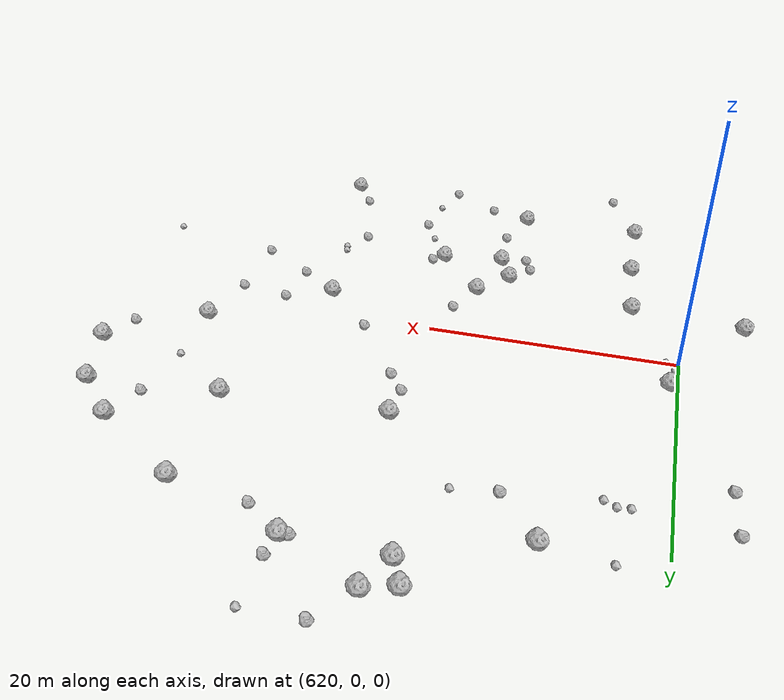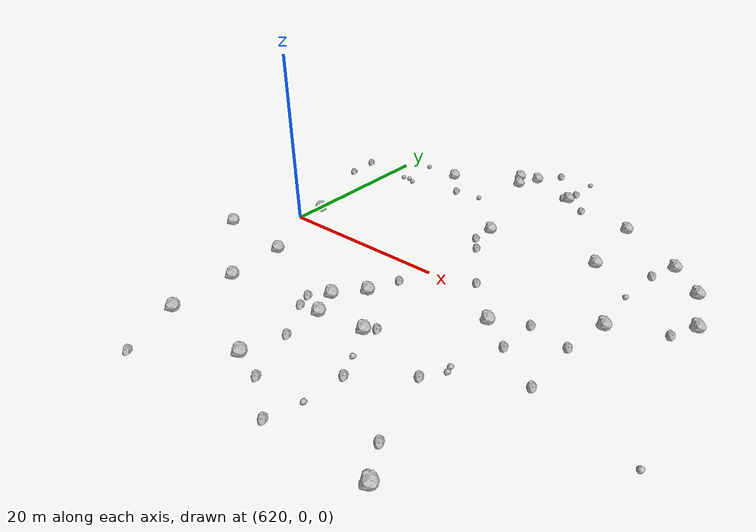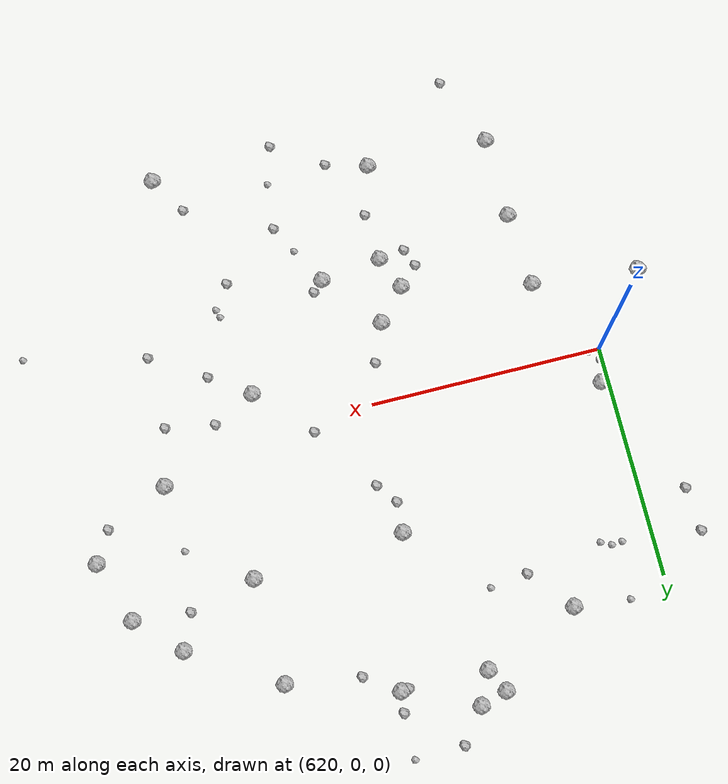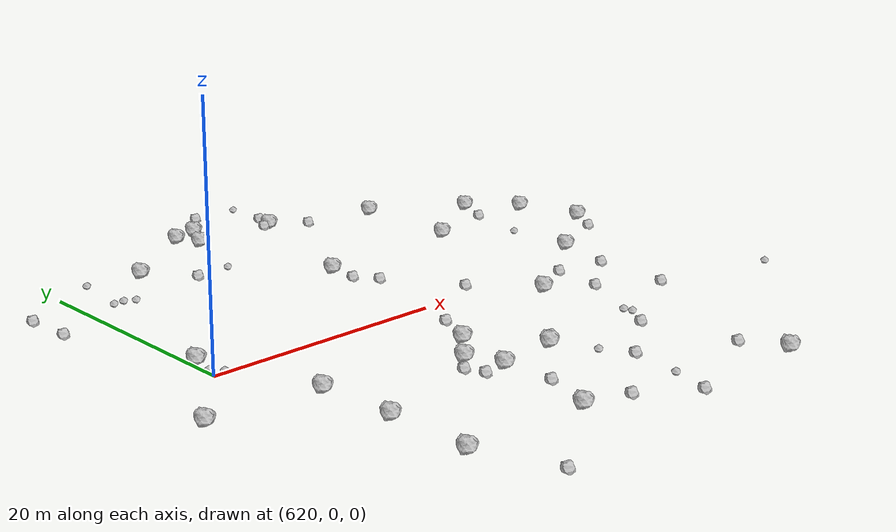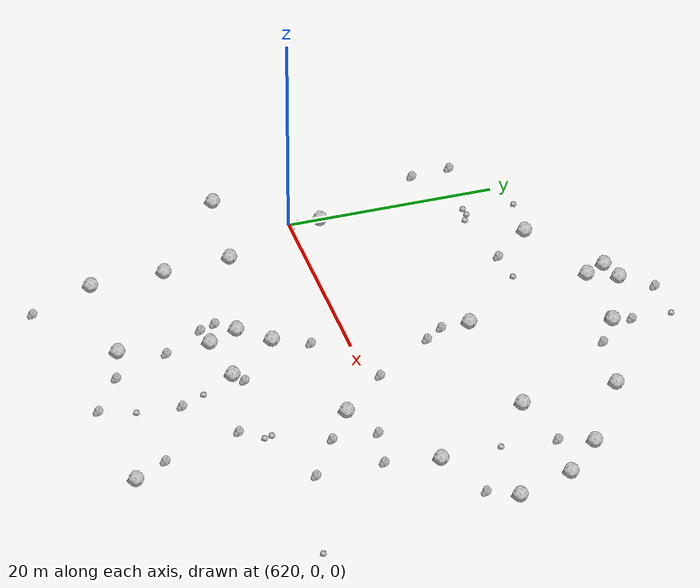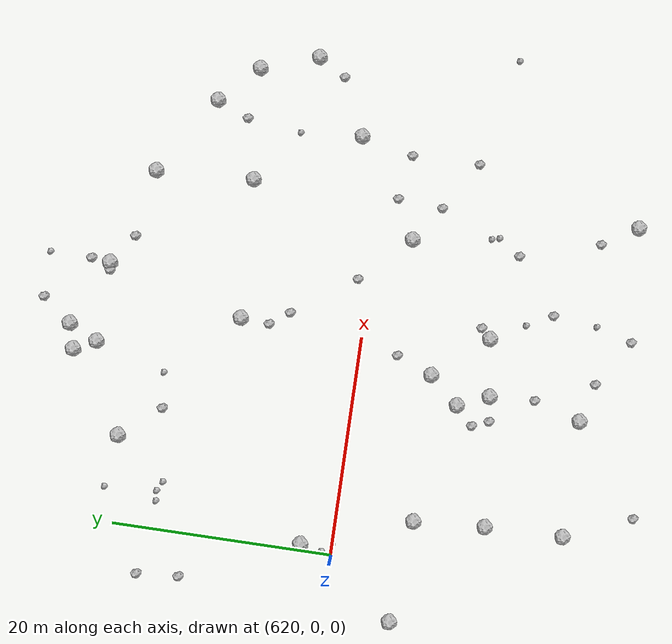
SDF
<sdf version="1.6">
 <world name="default">
  <include><uri>model://sun</uri></include>
  <model name="rock1_16_3">
   <include><uri>model://rock1</uri><pose>637.4963978427446 26.707642081368043 0.5 0 0 0</pose></include>
  </model>
  <model name="rock1_16_4">
   <include><uri>model://rock1</uri><pose>665.5605727832263 7.674501558054757 0.5 0 0 0</pose></include>
  </model>
  <model name="rock1_16_5">
   <include><uri>model://rock1</uri><pose>635.2114372541884 -20.660726522223243 0.5 0 0 0</pose></include>
  </model>
  <model name="rock1_16_6">
   <include><uri>model://rock1</uri><pose>624.5416950286506 -13.3896351520813 0.5 0 0 0</pose></include>
  </model>
  <model name="rock1_16_7">
   <include><uri>model://rock1</uri><pose>620.6551806408487 2.8565286310039397 0.5 0 0 0</pose></include>
  </model>
  <model name="rock1_16_8">
   <include><uri>model://rock1</uri><pose>640.2087321617533 11.2652835739269 0.5 0 0 0</pose></include>
  </model>
  <model name="rock1_16_9">
   <include><uri>model://rock1</uri><pose>624.1117670441309 -6.954394995694567 0.5 0 0 0</pose></include>
  </model>
  <model name="rock1_16_10">
   <include><uri>model://rock1</uri><pose>627.996485611186 20.702826392908293 0.5 0 0 0</pose></include>
  </model>
  <model name="rock1_16_11">
   <include><uri>model://rock1</uri><pose>635.2089806086973 26.027593553146247 0.5 0 0 0</pose></include>
  </model>
  <model name="rock1_16_12">
   <include><uri>model://rock1</uri><pose>635.0772261499923 -9.415442365724878 0.5 0 0 0</pose></include>
  </model>
  <model name="rock1_16_13">
   <include><uri>model://rock1</uri><pose>636.2126754106698 24.02277130079385 0.5 0 0 0</pose></include>
  </model>
  <model name="rock1_16_14">
   <include><uri>model://rock1</uri><pose>649.6653592363512 -3.319265518503876 0.5 0 0 0</pose></include>
  </model>
  <model name="rock1_16_15">
   <include><uri>model://rock1</uri><pose>660.1567849929874 16.452211713327422 0.5 0 0 0</pose></include>
  </model>
  <model name="rock1_16_16">
   <include><uri>model://rock1</uri><pose>658.6349680359681 2.6502960088125604 0.5 0 0 0</pose></include>
  </model>
  <model name="rock1_16_17">
   <include><uri>model://rock1</uri><pose>653.1650801367321 12.040422792198257 0.5 0 0 0</pose></include>
  </model>
  <model name="rock1_16_18">
   <include><uri>model://rock1</uri><pose>643.5950288705834 23.969300289924455 0.5 0 0 0</pose></include>
  </model>
  <model name="rock1_16_19">
   <include><uri>model://rock1</uri><pose>624.6638532242023 -20.45407765321347 0.5 0 0 0</pose></include>
  </model>
  <model name="rock1_16_20">
   <include><uri>model://rock1</uri><pose>614.9599283245108 -6.030740545897785 0.5 0 0 0</pose></include>
  </model>
  <model name="rock1_16_21">
   <include><uri>model://rock1</uri><pose>641.5354695757692 -11.604971321927053 0.5 0 0 0</pose></include>
  </model>
  <model name="rock1_16_22">
   <include><uri>model://rock1</uri><pose>637.495337108508 -6.729216980946063 0.5 0 0 0</pose></include>
  </model>
  <model name="rock1_16_23">
   <include><uri>model://rock1</uri><pose>653.6916866722923 -23.84955197178938 0.5 0 0 0</pose></include>
  </model>
  <model name="rock1_16_24">
   <include><uri>model://rock1</uri><pose>636.2770174562085 -12.260918660070203 0.5 0 0 0</pose></include>
  </model>
  <model name="rock1_16_25">
   <include><uri>model://rock1</uri><pose>652.7174769203132 21.10013049783811 0.5 0 0 0</pose></include>
  </model>
  <model name="rock1_16_26">
   <include><uri>model://rock1</uri><pose>663.723739572961 13.00070141251993 0.5 0 0 0</pose></include>
  </model>
  <model name="rock2_16_0">
   <include><uri>model://rock2</uri><pose>643.0483755204061 -24.490482939506933 0.3 0 0 0</pose></include>
  </model>
  <model name="rock2_16_1">
   <include><uri>model://rock2</uri><pose>664.0089183766836 5.080405708246516 0.3 0 0 0</pose></include>
  </model>
  <model name="rock2_16_2">
   <include><uri>model://rock2</uri><pose>638.8318751893627 -3.4314472043083875 0.3 0 0 0</pose></include>
  </model>
  <model name="rock2_16_3">
   <include><uri>model://rock2</uri><pose>615.9174105718834 17.137736473901583 0.3 0 0 0</pose></include>
  </model>
  <model name="rock2_16_4">
   <include><uri>model://rock2</uri><pose>642.8760311935969 23.899354055355275 0.3 0 0 0</pose></include>
  </model>
  <model name="rock2_16_5">
   <include><uri>model://rock2</uri><pose>639.5928469778304 29.50804540419756 0.3 0 0 0</pose></include>
  </model>
  <model name="rock2_16_6">
   <include><uri>model://rock2</uri><pose>642.4360836272767 -10.74435148970499 0.3 0 0 0</pose></include>
  </model>
  <model name="rock2_16_7">
   <include><uri>model://rock2</uri><pose>649.5357619816723 -13.306187052888923 0.3 0 0 0</pose></include>
  </model>
  <model name="rock2_16_8">
   <include><uri>model://rock2</uri><pose>657.493410988961 -2.2302364042685277 0.3 0 0 0</pose></include>
  </model>
  <model name="rock2_16_9">
   <include><uri>model://rock2</uri><pose>640.0164151013204 8.632505777633014 0.3 0 0 0</pose></include>
  </model>
  <model name="rock2_16_10">
   <include><uri>model://rock2</uri><pose>638.7642202575036 -21.707962684454174 0.3 0 0 0</pose></include>
  </model>
  <model name="rock2_16_11">
   <include><uri>model://rock2</uri><pose>633.4082594103126 -11.013832893750013 0.3 0 0 0</pose></include>
  </model>
  <model name="rock2_16_12">
   <include><uri>model://rock2</uri><pose>641.3247566054162 6.865769113194709 0.3 0 0 0</pose></include>
  </model>
  <model name="rock2_16_13">
   <include><uri>model://rock2</uri><pose>616.1979708989921 13.330325309596681 0.3 0 0 0</pose></include>
  </model>
  <model name="rock2_16_14">
   <include><uri>model://rock2</uri><pose>657.5556452942446 -8.52531629720734 0.3 0 0 0</pose></include>
  </model>
  <model name="rock2_16_15">
   <include><uri>model://rock2</uri><pose>652.9763299334242 -5.660746410868221 0.3 0 0 0</pose></include>
  </model>
  <model name="rock2_16_16">
   <include><uri>model://rock2</uri><pose>636.5072760296015 -16.417543391721665 0.3 0 0 0</pose></include>
  </model>
  <model name="rock2_16_17">
   <include><uri>model://rock2</uri><pose>644.4803207857076 -17.12676862027878 0.3 0 0 0</pose></include>
  </model>
  <model name="rock2_16_18">
   <include><uri>model://rock2</uri><pose>651.7005110894423 -20.638438591063153 0.3 0 0 0</pose></include>
  </model>
  <model name="rock2_16_19">
   <include><uri>model://rock2</uri><pose>658.8491756426405 13.46996176368409 0.3 0 0 0</pose></include>
  </model>
  <model name="rock2_16_20">
   <include><uri>model://rock2</uri><pose>645.3053422777151 1.1493628490946577 0.3 0 0 0</pose></include>
  </model>
  <model name="rock2_16_21">
   <include><uri>model://rock2</uri><pose>630.9798006767471 17.127397547279124 0.3 0 0 0</pose></include>
  </model>
  <model name="rock2_16_22">
   <include><uri>model://rock2</uri><pose>643.7714945717518 25.766621593491358 0.3 0 0 0</pose></include>
  </model>
  <model name="rock2_16_23">
   <include><uri>model://rock2</uri><pose>627.1632159191007 -26.586001593833615 0.3 0 0 0</pose></include>
  </model>
  <model name="rock2_16_24">
   <include><uri>model://rock2</uri><pose>634.0182230269178 -12.538543133890954 0.3 0 0 0</pose></include>
  </model>
  <model name="rock2_16_25">
   <include><uri>model://rock2</uri><pose>646.3675739353109 22.077880232806066 0.3 0 0 0</pose></include>
  </model>
  <model name="rock2_16_26">
   <include><uri>model://rock2</uri><pose>653.2804648131156 -1.4884653398787542 0.3 0 0 0</pose></include>
  </model>
  <model name="rock3_16_0">
   <include><uri>model://rock3</uri><pose>650.7376003864066 -10.598004688405943 0.2 0 0 0</pose></include>
  </model>
  <model name="rock3_16_1">
   <include><uri>model://rock3</uri><pose>624.3535045977727 16.021837979632508 0.2 0 0 0</pose></include>
  </model>
  <model name="rock3_16_2">
   <include><uri>model://rock3</uri><pose>650.9374378696027 -11.306539103005711 0.2 0 0 0</pose></include>
  </model>
  <model name="rock3_16_3">
   <include><uri>model://rock3</uri><pose>623.1851093474645 21.218601115647438 0.2 0 0 0</pose></include>
  </model>
  <model name="rock3_16_4">
   <include><uri>model://rock3</uri><pose>623.4843160864069 16.452387667753435 0.2 0 0 0</pose></include>
  </model>
  <model name="rock3_16_5">
   <include><uri>model://rock3</uri><pose>622.567350154185 16.380185969261447 0.2 0 0 0</pose></include>
  </model>
  <model name="rock3_16_6">
   <include><uri>model://rock3</uri><pose>667.8994058836684 -10.969910710799091 0.2 0 0 0</pose></include>
  </model>
  <model name="rock3_16_7">
   <include><uri>model://rock3</uri><pose>643.7965805333424 29.599927889648455 0.2 0 0 0</pose></include>
  </model>
  <model name="rock3_16_8">
   <include><uri>model://rock3</uri><pose>620.2306726477856 0.868308123365658 0.2 0 0 0</pose></include>
  </model>
  <model name="rock3_16_9">
   <include><uri>model://rock3</uri><pose>643.2195767588504 -14.787168381596716 0.2 0 0 0</pose></include>
  </model>
  <model name="rock3_16_10">
   <include><uri>model://rock3</uri><pose>634.2123068876087 17.490621700137226 0.2 0 0 0</pose></include>
  </model>
  <model name="rock3_16_11">
   <include><uri>model://rock3</uri><pose>658.1867946779943 8.362885297415168 0.2 0 0 0</pose></include>
  </model>
  <model name="rock3_16_12">
   <include><uri>model://rock3</uri><pose>620.9469614919149 0.006091942771014658 0.2 0 0 0</pose></include>
  </model>
  <model name="rock3_16_13">
   <include><uri>model://rock3</uri><pose>644.0266099754559 -21.232799359642865 0.2 0 0 0</pose></include>
  </model>
 </world>
</sdf>
